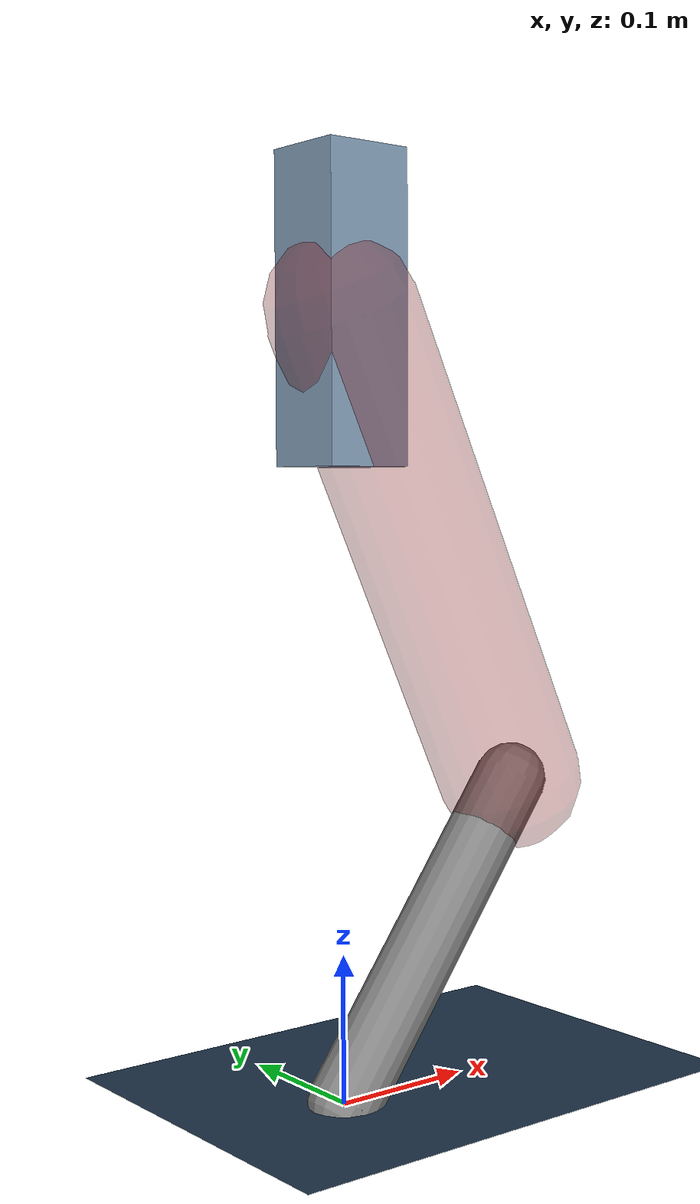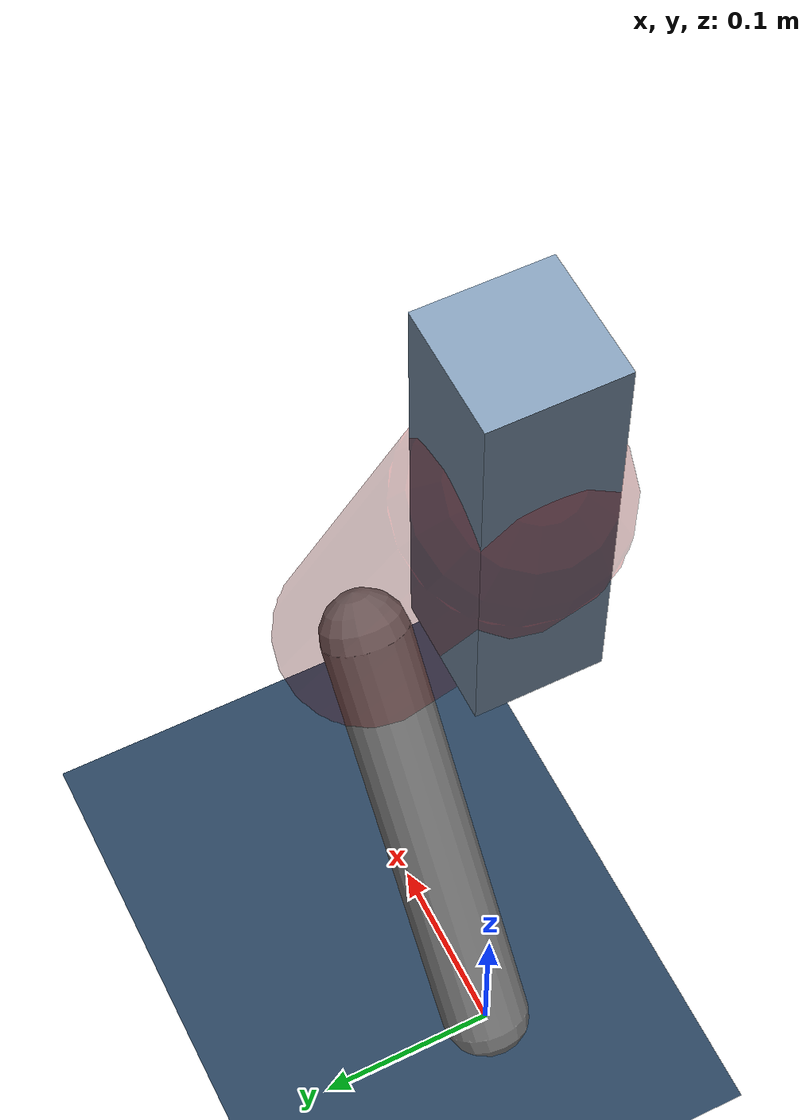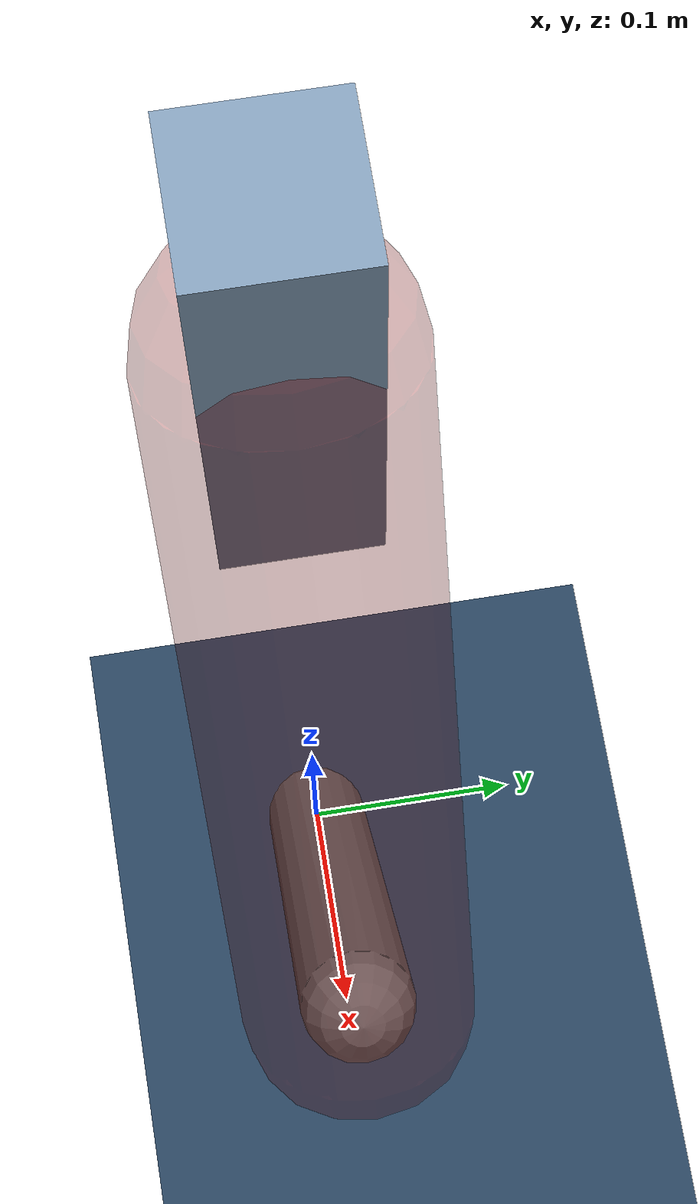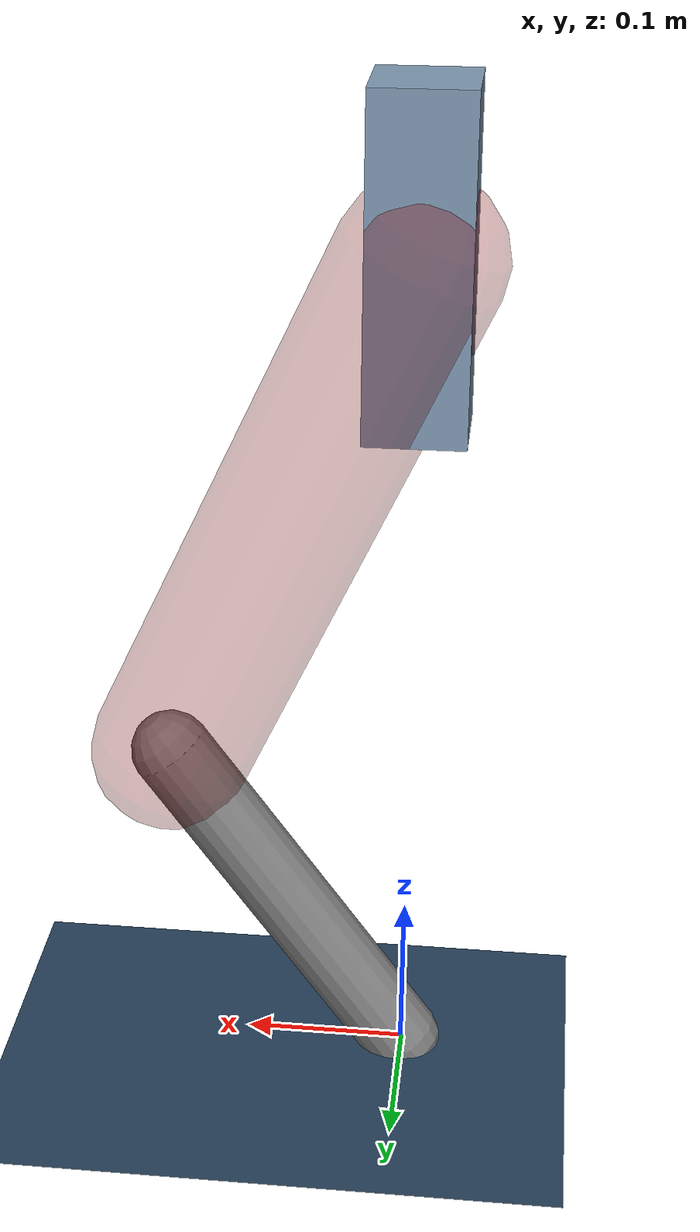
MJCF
<mujoco model="Hopper2D">
	<compiler inertiafromgeom="true" angle="radian" />
	<option timestep="0.001" integrator="implicit" cone="elliptic" solver="Newton" tolerance="1e-10" />

	<default>
		<geom contype="1" conaffinity="1" condim="3" friction="2 0.005 0.0001" solref="0.005 1" />
		<joint limited="true" damping="0.1" />
	</default>

	<asset>
		<texture name="skybox" type="skybox" builtin="gradient" rgb1=".4 .6 .8" rgb2="0 0 0" width="800" height="800" />
		<texture name="grid" type="2d" builtin="checker" rgb1=".1 .2 .3" rgb2=".2 .3 .4" width="300" height="300" mark="edge" markrgb=".2 .3 .4" />
		<material name="ground" texture="grid" texrepeat="1 1" texuniform="true" reflectance="0.1" />
		<material name="leg" rgba="0.5 0.6 0.7 1" />
	</asset>

	<worldbody>

		<geom name="floor" type="plane" size="5 5 0.25" material="ground" />

		<light directional="false" diffuse="0.8 0.8 0.8" specular="0.3 0.3 0.3" pos="0 0 2" dir="0 0 -1" />
		<light mode="targetbodycom" target="base" directional="false" diffuse="0.8 0.8 0.8" specular="0.3 0.3 0.3" pos="0 0 2" dir="0 0 -1" />

		<camera name="fixed" pos="0 -2 1" xyaxes="1 0 0 0 0 1" />
		<camera name="tracking" mode="trackcom" pos="0 -3 1" />

		<body name="root" pos="0 0 0.5203226144839401">
			<joint name="slide_x" type="slide" axis="1 0 0" range="-100 100" />
			<joint name="slide_z" type="slide" axis="0 0 1" range="0 10" />

			<body name="base" pos="0 0 0">
				<geom name="torso" type="box" size="0.03 0.03 0.1" mass="2.055" material="leg" />

				<body name="link1" pos="0 0 0" euler="0 1.1347709074746457 0">
					<joint type="hinge" axis="0 -1 0" pos="0 0 0" name="hinge1" limited="true" range="-3.14 3.14" stiffness="0" damping="0.1" />
					<geom name="thigh" type="capsule" fromto="0 0 0 0.34961800378056823 0 0" size="0.05" rgba="0.5 0 0 0.3" mass="1.125630410585591" />

					<body name="link2" pos="0.34961800378056823 0 0" euler="0 1.0639174844687085 0">
						<joint type="hinge" axis="0 -1 0" pos="0 0 0" name="hinge2" limited="true" range="-3.14 3.14" stiffness="0" damping="0.1" />
						<geom name="shank" type="capsule" fromto="0 0 0 0.2513578540649597 0 0" size="0.025" mass="0.44362206865846376" />

					</body>
				</body>
			</body>
		</body>
	</worldbody>

	<actuator>
		<motor name="torque1" joint="hinge1" ctrlrange="-33.193503325335236 33.193503325335236" ctrllimited="true" gear="1" />
		<motor name="torque2" joint="hinge2" ctrlrange="-91.91596344877742 91.91596344877742" ctrllimited="true" gear="1" />
	</actuator>
</mujoco>
